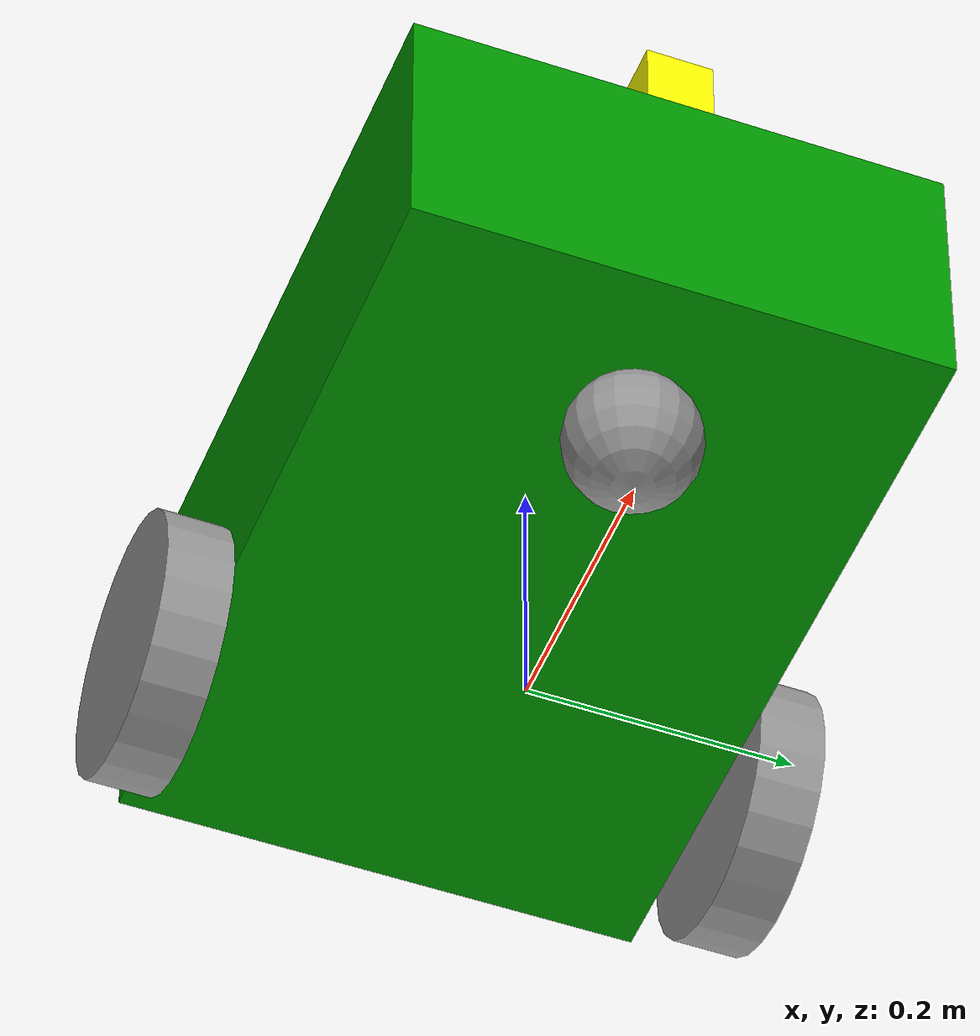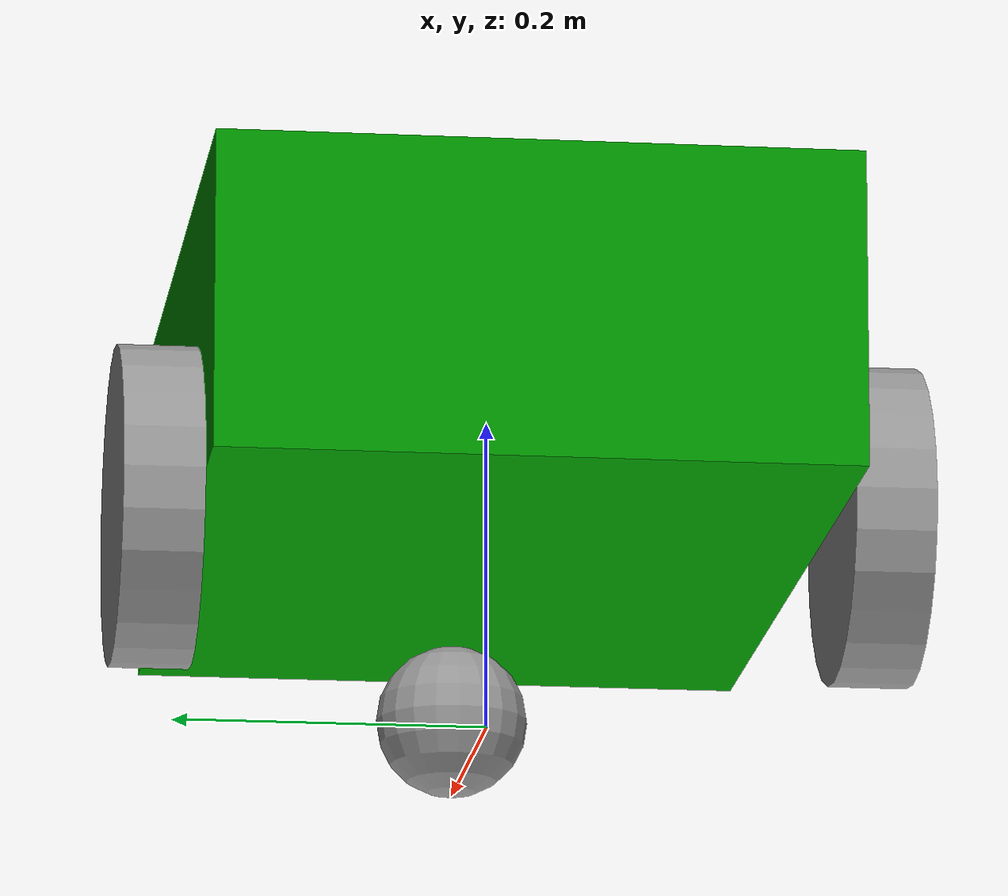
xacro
<?xml version="1.0"?>
<robot xmlns:xacro="http://www.ros.org/wiki/xacro" name="my_dd_robot">

    <!-- XACRO Properties -->
    <xacro:property name="x_dim" value="0.6"/>
    <xacro:property name="y_dim" value="0.4"/>
    <xacro:property name="z_dim" value="0.2"/>
    <xacro:property name="robotname" value="my_dd"/>
    <xacro:property name="wheel_radius" value="0.1"/>
    <xacro:property name="wheel_thickness" value="0.05"/>
    <xacro:property name="wheel_mass" value="0.2"/>

    <!-- XACRO Macro for Inertial Properties -->
    <xacro:macro name="inertial" params="mass">
        <inertial>
            <mass value="${mass}"/>
            <inertia ixx="1e-3" ixy="0.0" ixz="0.0" iyy="1e-3" iyz="0.0" izz="1e-3"/>
            <origin xyz="0.0 0.0 0.0" rpy="0.0 0.0 0.0"/>
        </inertial>
    </xacro:macro>

    <!-- Include Gazebo Plugins -->
    <xacro:include filename="$(find my_ddrobot)/model/my_dd_robot.gazebo"/>

    <!-- Materials -->
    <material name="grey">
        <color rgba="0.7 0.7 fadeToBlack0.7 1"/>
    </material>
    <material name="green">
        <color rgba="0 0.6 0 1"/>
    </material>
    <material name="white">
        <color rgba="1 1 1 1"/>
    </material>
    <material name="yellow">
        <color rgba="1 1 0 1"/>
    </material>

    <!-- Base Footprint -->
    <link name="base_footprint"/>

    <!-- Base Link (Body of the Robot) -->
    <link name="base_link">
        <visual>
            <geometry>
                <box size="${x_dim} ${y_dim} ${z_dim}"/>
            </geometry>
            <origin xyz="0 0 0.1" rpy="0 0 0"/>
            <material name="green"/>
        </visual>
        <collision>
            <geometry>
                <box size="${x_dim} ${y_dim} ${z_dim}"/>
            </geometry>
            <origin xyz="0 0 0.1" rpy="0 0 0"/>
        </collision>
        <xacro:inertial mass="2"/>
    </link>

    <!-- Left Wheel -->
    <link name="left_wheel">
        <visual>
            <geometry>
                <cylinder radius="${wheel_radius}" length="${wheel_thickness}"/>
            </geometry>
            <origin xyz="0 0 0" rpy="1.57 0 0"/>
            <material name="grey"/>
        </visual>
        <collision>
            <geometry>
                <cylinder radius="${wheel_radius}" length="${wheel_thickness}"/>
            </geometry>
            <origin xyz="0 0 0" rpy="1.57 0 0"/>
        </collision>
        <xacro:inertial mass="${wheel_mass}"/>
    </link>

    <!-- Right Wheel -->
    <link name="right_wheel">
        <visual>
            <geometry>
                <cylinder radius="${wheel_radius}" length="${wheel_thickness}"/>
            </geometry>
            <origin xyz="0 0 0" rpy="1.57 0 0"/>
            <material name="grey"/>
        </visual>
        <collision>
            <geometry>
                <cylinder radius="${wheel_radius}" length="${wheel_thickness}"/>
            </geometry>
            <origin xyz="0 0 0" rpy="1.57 0 0"/>
        </collision>
        <xacro:inertial mass="${wheel_mass}"/>
    </link>

    <!-- Caster Wheel -->
    <link name="caster_wheel">
        <visual>
            <geometry>
                <sphere radius="0.05"/>
            </geometry>
            <origin xyz="0 0 0" rpy="0 0 0"/>
            <material name="grey"/>
        </visual>
        <collision>
            <geometry>
                <sphere radius="0.05"/>
            </geometry>
            <origin xyz="0 0 0" rpy="0 0 0"/>
        </collision>
        <xacro:inertial mass="${wheel_mass}"/>
    </link>

    <!-- Camera Link -->
    <link name="camera_link">
        <visual>
            <geometry>
                <box size="0.05 0.05 0.05"/>
            </geometry>
            <origin xyz="0 0 0" rpy="0 0 0"/>
            <material name="yellow"/>
        </visual>
        <collision>
            <geometry>
                <box size="0.05 0.05 0.05"/>
            </geometry>
            <origin xyz="0 0 0" rpy="0 0 0"/>
        </collision>
        <xacro:inertial mass="0.2"/>
    </link>

    <!-- Camera Optical Link (Added for camera functionality) -->
    <link name="camera_link_optical">
        <inertial>
            <mass value="0.001"/>
            <inertia ixx="1e-6" ixy="0.0" ixz="0.0" iyy="1e-6" iyz="0.0" izz="1e-6"/>
        </inertial>
    </link>

    <!-- LIDAR Link -->
    <link name="lidar_link">
        <visual>
            <geometry>
                <cylinder radius="0.05" length="0.02"/>
            </geometry>
            <origin xyz="0 0 0" rpy="0 0 0"/>
            <material name="white"/>
        </visual>
        <collision>
            <geometry>
                <cylinder radius="0.05" length="0.02"/>
            </geometry>
            <origin xyz="0 0 0" rpy="0 0 0"/>
        </collision>
        <xacro:inertial mass="0.1"/>
    </link>

    <!-- IMU Link -->
    <link name="imu_link">
        <visual>
            <geometry>
                <box size="0.03 0.03 0.02"/>
            </geometry>
            <origin xyz="0 0 0" rpy="0 0 0"/>
            <material name="white"/>
        </visual>
        <collision>
            <geometry>
                <box size="0.03 0.03 0.02"/>
            </geometry>
            <origin xyz="0 0 0" rpy="0 0 0"/>
        </collision>
        <xacro:inertial mass="0.05"/>
    </link>

    <!-- Body to Base Joint -->
    <joint name="base_joint" type="fixed">
        <parent link="base_footprint"/>
        <child link="base_link"/>
        <origin xyz="0 0 0.1" rpy="0 0 0"/>
    </joint>

    <!-- Left Wheel to Body Joint -->
    <joint name="base_left_wheel_joint" type="continuous">
        <parent link="base_link"/>
        <child link="left_wheel"/>
        <origin xyz="-0.15 0.225 0" rpy="0 0 0"/>
        <axis xyz="0 1 0"/>
        <dynamics damping="1.0" friction="0.4"/>
    </joint>

    <!-- Right Wheel to Body Joint -->
    <joint name="base_right_wheel_joint" type="continuous">
        <parent link="base_link"/>
        <child link="right_wheel"/>
        <origin xyz="-0.15 -0.225 0" rpy="0 0 0"/>
        <axis xyz="0 1 0"/>
        <dynamics damping="1.0" friction="0.4"/>
    </joint>

    <!-- Caster Wheel to Body Joint -->
    <joint name="base_caster_wheel_joint" type="fixed">
        <parent link="base_link"/>
        <child link="caster_wheel"/>
        <origin xyz="0.2 0 -0.05" rpy="0 0 0"/>
    </joint>

    <!-- Camera to Body Joint -->
    <joint name="base_camera_joint" type="fixed">
        <parent link="base_link"/>
        <child link="camera_link"/>
        <origin xyz="${x_dim/2 - 0.05/2} 0 ${z_dim + (0.05/2)}" rpy="0 0 0"/>
    </joint>

    <!-- Camera Optical Joint (Added for camera functionality) -->
    <joint name="camera_optical_joint" type="fixed">
        <parent link="camera_link"/>
        <child link="camera_link_optical"/>
        <origin xyz="0 0 0" rpy="-1.5707963267948966 0 -1.5707963267948966"/>
    </joint>

    <!-- LIDAR to Body Joint -->
    <joint name="base_lidar_link_joint" type="fixed">
        <parent link="base_link"/>
        <child link="lidar_link"/>
        <origin xyz="0.0 0 0.25" rpy="0 0 0"/>
    </joint>

    <!-- IMU to Body Joint -->
    <joint name="base_imu_joint" type="fixed">
        <parent link="base_link"/>
        <child link="imu_link"/>
        <origin xyz="0.0 0 0.15" rpy="0 0 0"/>
    </joint>

</robot>
